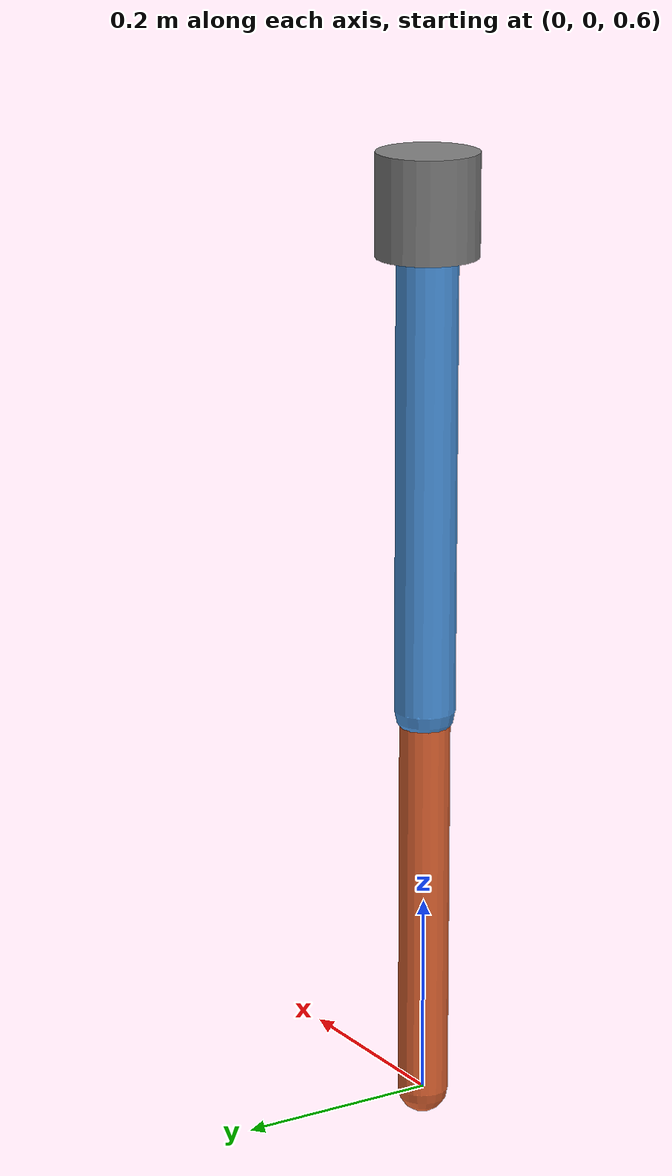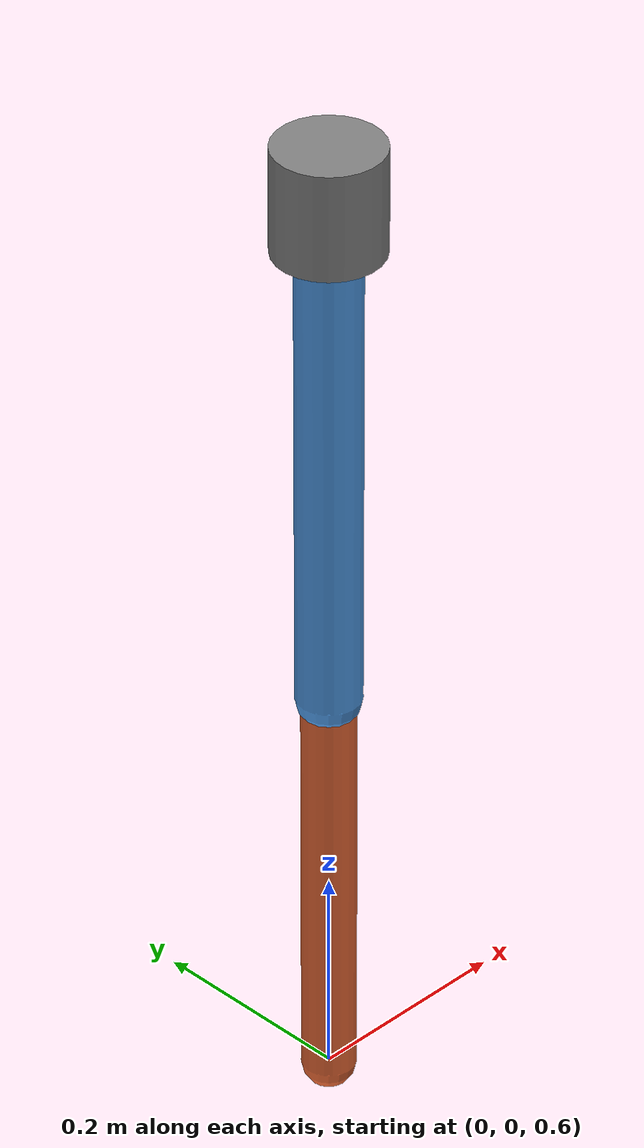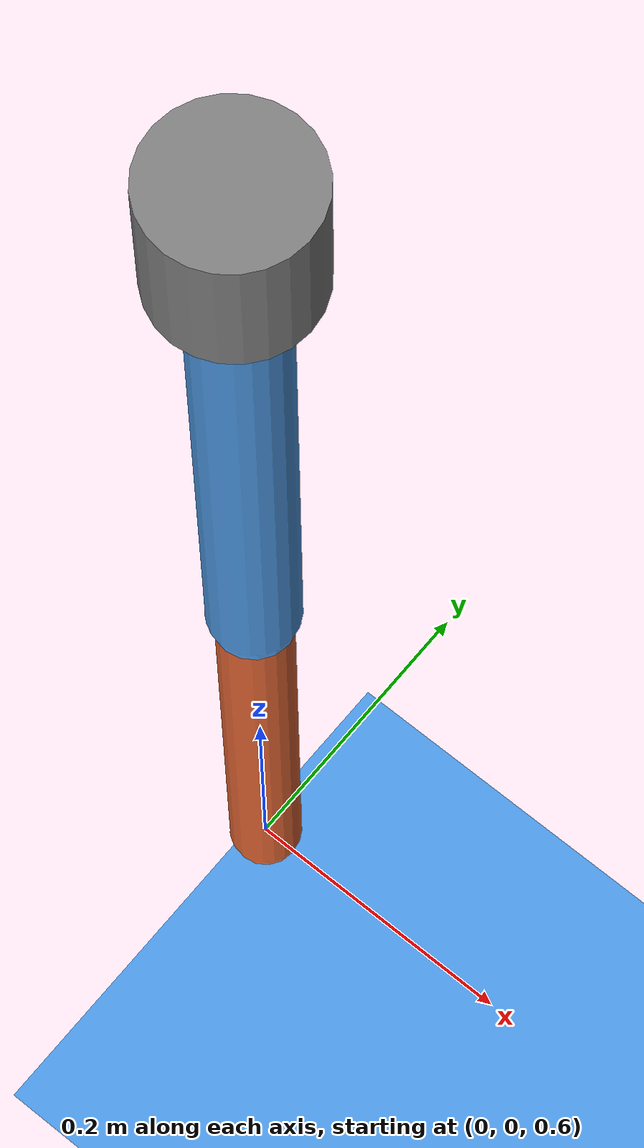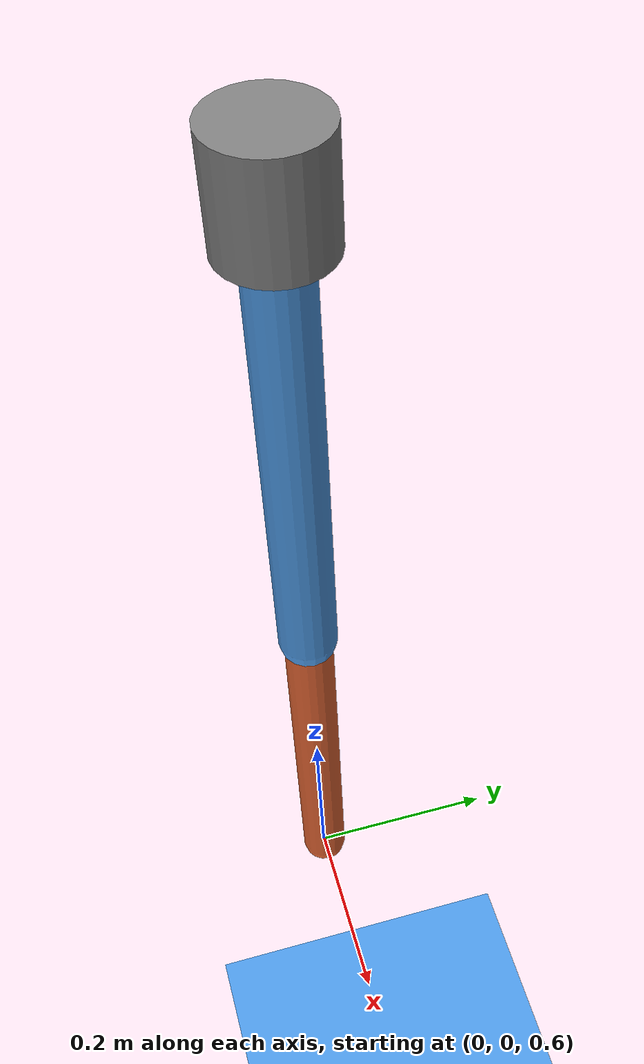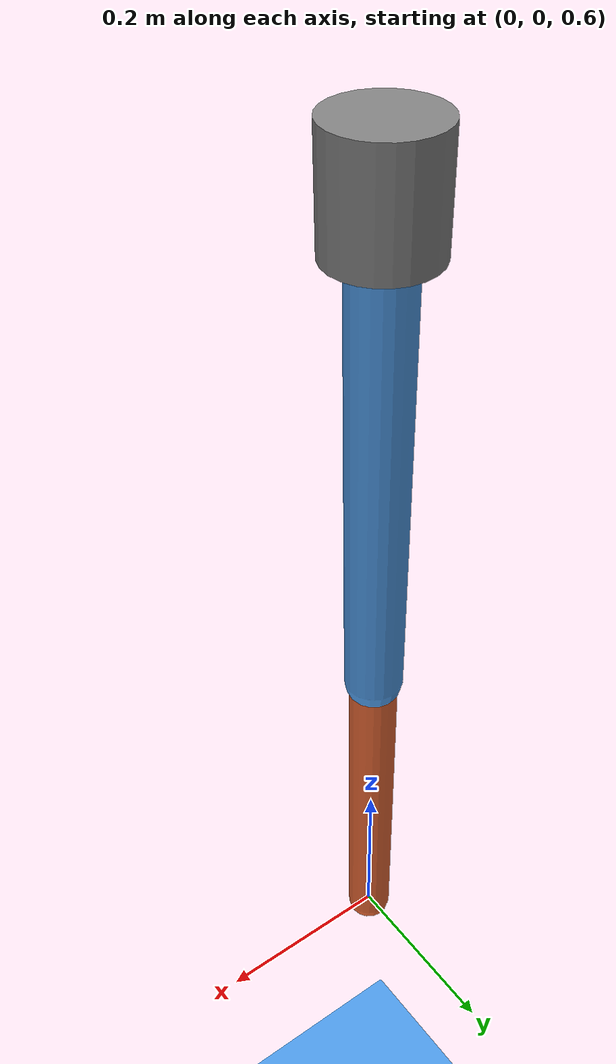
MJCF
<mujoco model="double_pendulum">

  <!-- 编译器设置：角度用度数，自动计算惯量 -->
  <compiler angle="degree" autolimits="true"/>

  <!-- 仿真选项：时间步 0.002s，默认重力 -->
  <option timestep="0.002" gravity="0 0 -9.81"/>

  <!-- 默认参数：统一设置关节阻尼和几何体外观 -->
  <default>
    <joint damping="0.5" armature="0.01"/>
    <geom rgba="0.3 0.6 0.9 1" contype="1" conaffinity="1"/>
    <position kp="10" ctrlrange="-180 180"/>
  </default>

  <!-- 视觉资源 -->
  <asset>
    <texture type="skybox" builtin="gradient" rgb1="0.4 0.5 0.6" rgb2="0 0 0" width="512" height="3072"/>
    <texture type="2d" name="groundplane" builtin="checker" mark="edge"
             rgb1="0.2 0.3 0.4" rgb2="0.1 0.2 0.3" markrgb="0.8 0.8 0.8"
             width="300" height="300"/>
    <material name="groundplane" texture="groundplane" texrepeat="5 5" texuniform="true" reflectance="0.2"/>
  </asset>

  <!-- ============================================================
       世界体：所有刚体的根节点
       ============================================================ -->
  <worldbody>
    <!-- 光源 -->
    <light pos="0 0 3" dir="0 0 -1" diffuse="0.8 0.8 0.8"/>

    <!-- 地面 -->
    <geom name="floor" type="plane" size="3 3 0.1" material="groundplane"/>

    <!-- 支撑架：固定在世界坐标系 -->
    <body name="mount" pos="0 0 1.5">
      <geom name="mount_geom" type="cylinder" size="0.05 0.05"
            rgba="0.5 0.5 0.5 1" mass="0"/>

      <!-- 连杆1：通过肩关节连接到支撑架 -->
      <body name="link1" pos="0 0 0">
        <!-- 肩关节：绕 Y 轴旋转 -->
        <joint name="shoulder" type="hinge" axis="0 1 0"
               range="-180 180"/>
        <!-- 连杆1 几何体：胶囊体 -->
        <geom name="link1_geom" type="capsule" size="0.03"
              fromto="0 0 0 0 0 -0.5" mass="1"
              rgba="0.3 0.6 0.9 1"/>

        <!-- 连杆2：通过肘关节连接到连杆1末端 -->
        <body name="link2" pos="0 0 -0.5">
          <!-- 肘关节：绕 Y 轴旋转 -->
          <joint name="elbow" type="hinge" axis="0 1 0"
                 range="-180 180"/>
          <!-- 连杆2 几何体 -->
          <geom name="link2_geom" type="capsule" size="0.025"
                fromto="0 0 0 0 0 -0.4" mass="0.5"
                rgba="0.9 0.4 0.2 1"/>

          <!-- 末端标记点 -->
          <site name="end_effector" pos="0 0 -0.4" size="0.02"
                rgba="1 0 0 1"/>
        </body>
      </body>
    </body>
  </worldbody>

  <!-- ============================================================
       执行器：为每个关节配置力矩电机
       ============================================================ -->
  <actuator>
    <!-- 位置伺服执行器：输入目标角度，内部 PD 控制 -->
    <position name="shoulder_pos" joint="shoulder" kp="20"/>
    <position name="elbow_pos" joint="elbow" kp="15"/>
  </actuator>

  <!-- ============================================================
       传感器：获取关节和末端状态
       ============================================================ -->
  <sensor>
    <!-- 关节角度传感器 -->
    <jointpos name="shoulder_angle" joint="shoulder"/>
    <jointpos name="elbow_angle" joint="elbow"/>

    <!-- 关节速度传感器 -->
    <jointvel name="shoulder_vel" joint="shoulder"/>
    <jointvel name="elbow_vel" joint="elbow"/>

    <!-- 执行器力传感器 -->
    <actuatorfrc name="shoulder_force" actuator="shoulder_pos"/>
    <actuatorfrc name="elbow_force" actuator="elbow_pos"/>

    <!-- 末端位置传感器 -->
    <framepos name="end_pos" objtype="site" objname="end_effector"/>
  </sensor>

</mujoco>
